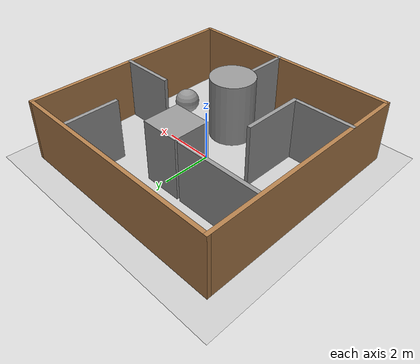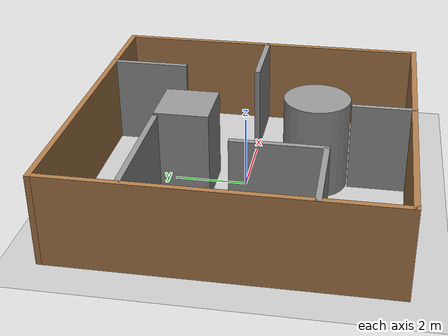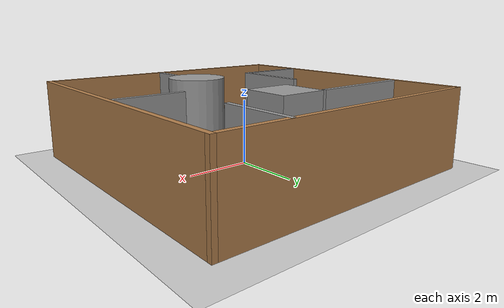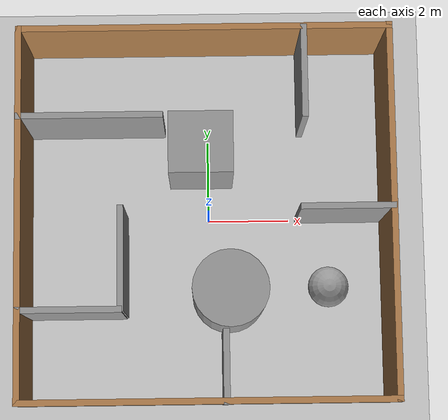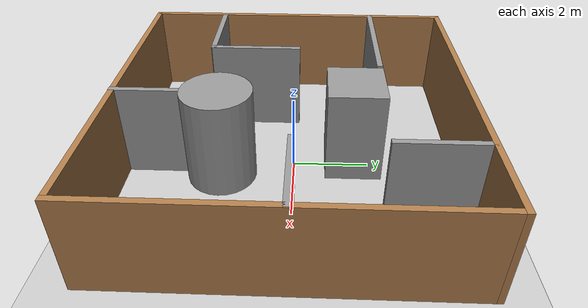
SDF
<sdf version="1.7">
 <world name="default">
  <light name="sun" type="directional">
   <pose>0 0 10 0 -0 0</pose>
   <diffuse>0.8 0.8 0.8 1</diffuse>
   <specular>0.2 0.2 0.2 1</specular>
   <attenuation>
    <range>1000</range>
    <constant>0.9</constant>
    <linear>0.01</linear>
    <quadratic>0.001</quadratic>
   </attenuation>
   <direction>-0.5 0.1 -0.9</direction>
   <spot><inner_angle>0</inner_angle><outer_angle>0</outer_angle><falloff>0</falloff></spot>
  </light>
  <model name="ground_plane">
   <static>1</static>
   <link name="link">
    <collision name="collision">
     <geometry><plane><normal>0 0 1</normal><size>100 100</size></plane></geometry>
     <surface>
      <contact><collide_bitmask>65535</collide_bitmask></contact>
      <friction><ode><mu>100</mu><mu2>50</mu2></ode></friction>
     </surface>
    </collision>
    <visual name="visual">
     <cast_shadows>0</cast_shadows>
     <geometry><plane><normal>0 0 1</normal><size>100 100</size></plane></geometry>
     <material>
      <script><uri>file://media/materials/scripts/gazebo.material</uri><name>Gazebo/Grey</name></script>
     </material>
    </visual>
   </link>
  </model>
  <gravity>0 0 -9.8</gravity>
  <magnetic_field>6e-06 2.3e-05 -4.2e-05</magnetic_field>
  <atmosphere type="adiabatic"/>
  <physics type="ode">
   <max_step_size>0.001</max_step_size>
   <real_time_factor>1</real_time_factor>
   <real_time_update_rate>1000</real_time_update_rate>
  </physics>
  <scene><ambient>0.4 0.4 0.4 1</ambient><background>0.7 0.7 0.7 1</background><shadows>1</shadows></scene>
  <spherical_coordinates>
   <surface_model>EARTH_WGS84</surface_model>
   <latitude_deg>0</latitude_deg>
   <longitude_deg>0</longitude_deg>
   <elevation>0</elevation>
   <heading_deg>0</heading_deg>
  </spherical_coordinates>
  <model name="map_simple_base">
   <pose>-0.071141 -0.068173 0 0 -0 0</pose>
   <link name="Wall_100">
    <collision name="Wall_100_Collision">
     <geometry><box><size>2.25 0.15 2.5</size></box></geometry>
     <pose>0 0 1.25 0 -0 0</pose>
    </collision>
    <visual name="Wall_100_Visual">
     <pose>0 0 1.25 0 -0 0</pose>
     <geometry><box><size>2.25 0.15 2.5</size></box></geometry>
     <material>
      <script><uri>file://media/materials/scripts/gazebo.material</uri><name>Gazebo/Grey</name></script>
      <ambient>1 1 1 1</ambient>
     </material>
     <meta><layer>0</layer></meta>
    </visual>
    <pose>3.35453 0.084274 0 0 -0 3.14159</pose>
   </link>
   <link name="Wall_104">
    <collision name="Wall_104_Collision">
     <geometry><box><size>1.75 0.15 2.5</size></box></geometry>
     <pose>0 0 1.25 0 -0 0</pose>
    </collision>
    <visual name="Wall_104_Visual">
     <pose>0 0 1.25 0 -0 0</pose>
     <geometry><box><size>1.75 0.15 2.5</size></box></geometry>
     <material>
      <script><uri>file://media/materials/scripts/gazebo.material</uri><name>Gazebo/Grey</name></script>
      <ambient>1 1 1 1</ambient>
     </material>
     <meta><layer>0</layer></meta>
    </visual>
    <pose>0.43527 -3.63029 0 0 -0 -1.5708</pose>
   </link>
   <link name="Wall_108">
    <collision name="Wall_108_Collision">
     <geometry><box><size>2.25 0.15 2.5</size></box></geometry>
     <pose>0 0 1.25 0 -0 0</pose>
    </collision>
    <visual name="Wall_108_Visual">
     <pose>0 0 1.25 0 -0 0</pose>
     <geometry><box><size>2.25 0.15 2.5</size></box></geometry>
     <material>
      <script><uri>file://media/materials/scripts/gazebo.material</uri><name>Gazebo/Grey</name></script>
      <ambient>1 1 1 1</ambient>
     </material>
     <meta><layer>0</layer></meta>
    </visual>
    <pose>2.38211 3.34621 0 0 -0 -1.5708</pose>
   </link>
   <link name="Wall_14">
    <collision name="Wall_14_Collision">
     <geometry><box><size>9 0.15 2.5</size></box></geometry>
     <pose>0 0 1.25 0 -0 0</pose>
    </collision>
    <visual name="Wall_14_Visual">
     <pose>0 0 1.25 0 -0 0</pose>
     <geometry><box><size>9 0.15 2.5</size></box></geometry>
     <material>
      <script><uri>file://media/materials/scripts/gazebo.material</uri><name>Gazebo/Wood</name></script>
      <ambient>0.435294 0.796078 0.67451 1</ambient>
     </material>
     <meta><layer>0</layer></meta>
    </visual>
    <pose>-4.425 0.005289 0 0 -0 -1.5708</pose>
   </link>
   <link name="Wall_20">
    <collision name="Wall_20_Collision">
     <geometry><box><size>9 0.15 2.5</size></box></geometry>
     <pose>0 0 1.25 0 -0 0</pose>
    </collision>
    <visual name="Wall_20_Visual">
     <pose>0 0 1.25 0 -0 0</pose>
     <geometry><box><size>9 0.15 2.5</size></box></geometry>
     <material>
      <script><uri>file://media/materials/scripts/gazebo.material</uri><name>Gazebo/Wood</name></script>
      <ambient>0.435294 0.796078 0.67451 1</ambient>
     </material>
     <meta><layer>0</layer></meta>
    </visual>
    <pose>4.425 0.005289 0 0 -0 1.5708</pose>
   </link>
   <link name="Wall_21">
    <collision name="Wall_21_Collision">
     <geometry><box><size>9 0.15 2.5</size></box></geometry>
     <pose>0 0 1.25 0 -0 0</pose>
    </collision>
    <visual name="Wall_21_Visual">
     <pose>0 0 1.25 0 -0 0</pose>
     <geometry><box><size>9 0.15 2.5</size></box></geometry>
     <material>
      <script><uri>file://media/materials/scripts/gazebo.material</uri><name>Gazebo/Wood</name></script>
      <ambient>0.435294 0.796078 0.67451 1</ambient>
     </material>
     <meta><layer>0</layer></meta>
    </visual>
    <pose>-0 4.43029 0 0 -0 3.14159</pose>
   </link>
   <link name="Wall_23">
    <collision name="Wall_23_Collision">
     <geometry><box><size>9 0.15 2.5</size></box></geometry>
     <pose>0 0 1.25 0 -0 0</pose>
    </collision>
    <visual name="Wall_23_Visual">
     <pose>0 0 1.25 0 -0 0</pose>
     <geometry><box><size>9 0.15 2.5</size></box></geometry>
     <material>
      <script><uri>file://media/materials/scripts/gazebo.material</uri><name>Gazebo/Wood</name></script>
      <ambient>0.435294 0.796078 0.67451 1</ambient>
     </material>
     <meta><layer>0</layer></meta>
    </visual>
    <pose>-0 -4.41971 0 0 -0 0</pose>
   </link>
   <link name="Wall_65">
    <collision name="Wall_65_Collision">
     <geometry><box><size>2.5 0.15 2.5</size></box></geometry>
     <pose>0 0 1.25 0 -0 0</pose>
    </collision>
    <visual name="Wall_65_Visual">
     <pose>0 0 1.25 0 -0 0</pose>
     <geometry><box><size>2.5 0.15 2.5</size></box></geometry>
     <material>
      <script><uri>file://media/materials/scripts/gazebo.material</uri><name>Gazebo/Grey</name></script>
      <ambient>1 1 1 1</ambient>
     </material>
     <meta><layer>0</layer></meta>
    </visual>
    <pose>-3.23212 -2.2827 0 0 -0 0</pose>
   </link>
   <link name="Wall_81">
    <collision name="Wall_81_Collision">
     <geometry><box><size>2.5 0.15 2.5</size></box></geometry>
     <pose>0 0 1.25 0 -0 0</pose>
    </collision>
    <visual name="Wall_81_Visual">
     <pose>0 0 1.25 0 -0 0</pose>
     <geometry><box><size>2.5 0.15 2.5</size></box></geometry>
     <material>
      <script><uri>file://media/materials/scripts/gazebo.material</uri><name>Gazebo/Grey</name></script>
      <ambient>1 1 1 1</ambient>
     </material>
     <meta><layer>0</layer></meta>
    </visual>
    <pose>-2.01886 -1.08342 0 0 -0 1.5708</pose>
   </link>
   <link name="Wall_98">
    <collision name="Wall_98_Collision">
     <geometry><box><size>3.5 0.15 2.5</size></box></geometry>
     <pose>0 0 1.25 0 -0 0</pose>
    </collision>
    <visual name="Wall_98_Visual">
     <pose>0 0 1.25 0 -0 0</pose>
     <geometry><box><size>3.5 0.15 2.5</size></box></geometry>
     <material>
      <script><uri>file://media/materials/scripts/gazebo.material</uri><name>Gazebo/Grey</name></script>
      <ambient>1 1 1 1</ambient>
     </material>
     <meta><layer>0</layer></meta>
    </visual>
    <pose>-2.74241 2.31656 0 0 -0 0</pose>
   </link>
   <static>1</static>
  </model>
  <model name="unit_cylinder">
   <pose>0.486353 -1.88655 1.28845 0 -0 6e-06</pose>
   <link name="link">
    <inertial>
     <mass>1</mass>
     <inertia><ixx>0.145833</ixx><ixy>0</ixy><ixz>0</ixz><iyy>0.145833</iyy><iyz>0</iyz><izz>0.125</izz></inertia>
    </inertial>
    <collision name="collision">
     <geometry><cylinder><radius>0.90966</radius><length>2.57689</length></cylinder></geometry>
    </collision>
    <visual name="visual">
     <geometry><cylinder><radius>0.90966</radius><length>2.57689</length></cylinder></geometry>
     <material>
      <script><name>Gazebo/Grey</name><uri>file://media/materials/scripts/gazebo.material</uri></script>
     </material>
    </visual>
   </link>
  </model>
  <model name="unit_box">
   <pose>-0.177998 1.58363 1.25197 -1e-06 -0 -0.001076</pose>
   <link name="link">
    <inertial>
     <mass>1</mass>
     <inertia>
      <ixx>0.166667</ixx>
      <ixy>0</ixy>
      <ixz>0</ixz>
      <iyy>0.166667</iyy>
      <iyz>0</iyz>
      <izz>0.166667</izz>
     </inertia>
    </inertial>
    <collision name="collision"><geometry><box><size>1.54671 1.47847 2.50394</size></box></geometry></collision>
    <visual name="visual">
     <geometry><box><size>1.54671 1.47847 2.50394</size></box></geometry>
     <material>
      <script><name>Gazebo/Grey</name><uri>file://media/materials/scripts/gazebo.material</uri></script>
     </material>
    </visual>
   </link>
  </model>
  <model name="unit_sphere">
   <pose>2.92411 -1.71915 0.5 0 -0 0</pose>
   <link name="link">
    <inertial>
     <mass>1</mass>
     <inertia><ixx>0.1</ixx><ixy>0</ixy><ixz>0</ixz><iyy>0.1</iyy><iyz>0</iyz><izz>0.1</izz></inertia>
    </inertial>
    <collision name="collision"><geometry><sphere><radius>0.5</radius></sphere></geometry></collision>
    <visual name="visual">
     <geometry><sphere><radius>0.5</radius></sphere></geometry>
     <material>
      <script><name>Gazebo/Grey</name><uri>file://media/materials/scripts/gazebo.material</uri></script>
     </material>
    </visual>
   </link>
  </model>
 </world>
</sdf>
